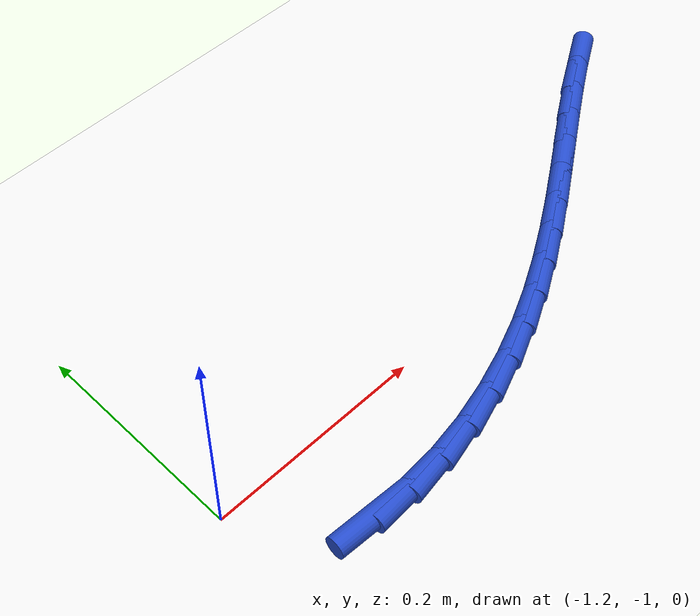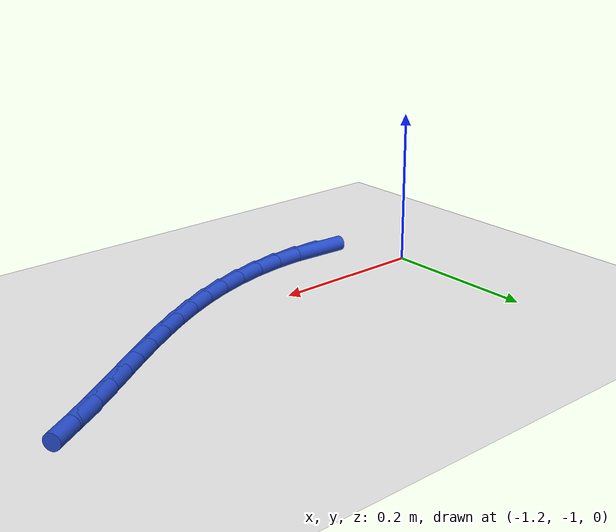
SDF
<sdf version="1.6">
 <world name="default">
  <model name="ground_plane">
   <static>1</static>
   <link name="link">
    <collision name="collision">
     <geometry><plane><normal>0 0 1</normal><size>100 100</size></plane></geometry>
     <surface><friction><ode><mu>100</mu><mu2>50</mu2></ode></friction></surface>
    </collision>
    <visual name="visual">
     <cast_shadows>0</cast_shadows>
     <geometry><plane><normal>0 0 1</normal><size>100 100</size></plane></geometry>
     <material>
      <script><uri>file://media/materials/scripts/gazebo.material</uri><name>Gazebo/WhiteGlow</name></script>
     </material>
    </visual>
   </link>
  </model>
  <model name="line">
   <link name="link_143">
    <pose>-1.1197795712026841 -1.0834802890524902 0.01 0 1.57 -0.05437794871093221</pose>
    <collision name="collision">
     <geometry><cylinder><radius>0.01</radius><length>0.08</length></cylinder></geometry>
    </collision>
    <visual name="visual">
     <material>
      <script><name>Gazebo/Blue</name><uri>file://media/materials/scripts/gazebo.material</uri></script>
     </material>
     <geometry><cylinder><radius>0.01</radius><length>0.08</length></cylinder></geometry>
    </visual>
   </link>
   <link name="link_144">
    <pose>-1.083799798507211 -1.0854387260081584 0.01 0 1.57 0.05459472218392307</pose>
    <collision name="collision">
     <geometry><cylinder><radius>0.01</radius><length>0.08</length></cylinder></geometry>
    </collision>
    <visual name="visual">
     <material>
      <script><name>Gazebo/Blue</name><uri>file://media/materials/scripts/gazebo.material</uri></script>
     </material>
     <geometry><cylinder><radius>0.01</radius><length>0.08</length></cylinder></geometry>
    </visual>
   </link>
   <link name="link_145">
    <pose>-1.0472900944861374 -1.0834435061595236 0.01 0 1.57 0.14937231876765494</pose>
    <collision name="collision">
     <geometry><cylinder><radius>0.01</radius><length>0.08</length></cylinder></geometry>
    </collision>
    <visual name="visual">
     <material>
      <script><name>Gazebo/Blue</name><uri>file://media/materials/scripts/gazebo.material</uri></script>
     </material>
     <geometry><cylinder><radius>0.01</radius><length>0.08</length></cylinder></geometry>
    </visual>
   </link>
   <link name="link_146">
    <pose>-1.010718047633984 -1.077939659595179 0.01 0 1.57 0.23259940332338705</pose>
    <collision name="collision">
     <geometry><cylinder><radius>0.01</radius><length>0.08</length></cylinder></geometry>
    </collision>
    <visual name="visual">
     <material>
      <script><name>Gazebo/Blue</name><uri>file://media/materials/scripts/gazebo.material</uri></script>
     </material>
     <geometry><cylinder><radius>0.01</radius><length>0.08</length></cylinder></geometry>
    </visual>
   </link>
   <link name="link_147">
    <pose>-0.9745512464452741 -1.0693722164037174 0.01 0 1.57 0.3069231724890567</pose>
    <collision name="collision">
     <geometry><cylinder><radius>0.01</radius><length>0.08</length></cylinder></geometry>
    </collision>
    <visual name="visual">
     <material>
      <script><name>Gazebo/Blue</name><uri>file://media/materials/scripts/gazebo.material</uri></script>
     </material>
     <geometry><cylinder><radius>0.01</radius><length>0.08</length></cylinder></geometry>
    </visual>
   </link>
   <link name="link_148">
    <pose>-0.9392572794145306 -1.0581862066737315 0.01 0 1.57 0.37455350536541643</pose>
    <collision name="collision">
     <geometry><cylinder><radius>0.01</radius><length>0.08</length></cylinder></geometry>
    </collision>
    <visual name="visual">
     <material>
      <script><name>Gazebo/Blue</name><uri>file://media/materials/scripts/gazebo.material</uri></script>
     </material>
     <geometry><cylinder><radius>0.01</radius><length>0.08</length></cylinder></geometry>
    </visual>
   </link>
   <link name="link_149">
    <pose>-0.9052346601818524 -1.0448115411055434 0.01 0 1.57 0.4347848502196121</pose>
    <collision name="collision">
     <geometry><cylinder><radius>0.01</radius><length>0.08</length></cylinder></geometry>
    </collision>
    <visual name="visual">
     <material>
      <script><name>Gazebo/Blue</name><uri>file://media/materials/scripts/gazebo.material</uri></script>
     </material>
     <geometry><cylinder><radius>0.01</radius><length>0.08</length></cylinder></geometry>
    </visual>
   </link>
   <link name="link_150">
    <pose>-0.8724421428407302 -1.029581874020989 0.01 0 1.57 0.4860658014575879</pose>
    <collision name="collision">
     <geometry><cylinder><radius>0.01</radius><length>0.08</length></cylinder></geometry>
    </collision>
    <visual name="visual">
     <material>
      <script><name>Gazebo/Blue</name><uri>file://media/materials/scripts/gazebo.material</uri></script>
     </material>
     <geometry><cylinder><radius>0.01</radius><length>0.08</length></cylinder></geometry>
    </visual>
   </link>
   <link name="link_151">
    <pose>-0.8406660169235041 -1.012793109989337 0.01 0 1.57 0.5276881173948608</pose>
    <collision name="collision">
     <geometry><cylinder><radius>0.01</radius><length>0.08</length></cylinder></geometry>
    </collision>
    <visual name="visual">
     <material>
      <script><name>Gazebo/Blue</name><uri>file://media/materials/scripts/gazebo.material</uri></script>
     </material>
     <geometry><cylinder><radius>0.01</radius><length>0.08</length></cylinder></geometry>
    </visual>
   </link>
   <link name="link_152">
    <pose>-0.8096921661973477 -0.994741064764308 0.01 0 1.57 0.5592724017632558</pose>
    <collision name="collision">
     <geometry><cylinder><radius>0.01</radius><length>0.08</length></cylinder></geometry>
    </collision>
    <visual name="visual">
     <material>
      <script><name>Gazebo/Blue</name><uri>file://media/materials/scripts/gazebo.material</uri></script>
     </material>
     <geometry><cylinder><radius>0.01</radius><length>0.08</length></cylinder></geometry>
    </visual>
   </link>
   <link name="link_153">
    <pose>-0.7793064744294327 -0.9757215540996212 0.01 0 1.57 0.5806635521513313</pose>
    <collision name="collision">
     <geometry><cylinder><radius>0.01</radius><length>0.08</length></cylinder></geometry>
    </collision>
    <visual name="visual">
     <material>
      <script><name>Gazebo/Blue</name><uri>file://media/materials/scripts/gazebo.material</uri></script>
     </material>
     <geometry><cylinder><radius>0.01</radius><length>0.08</length></cylinder></geometry>
    </visual>
   </link>
   <link name="link_154">
    <pose>-0.7492948253869326 -0.9560303937489976 0.01 0 1.57 0.5918389713854231</pose>
    <collision name="collision">
     <geometry><cylinder><radius>0.01</radius><length>0.08</length></cylinder></geometry>
    </collision>
    <visual name="visual">
     <material>
      <script><name>Gazebo/Blue</name><uri>file://media/materials/scripts/gazebo.material</uri></script>
     </material>
     <geometry><cylinder><radius>0.01</radius><length>0.08</length></cylinder></geometry>
    </visual>
   </link>
   <link name="link_155">
    <pose>-0.7194431028370203 -0.9359633994661563 0.01 0 1.57 0.592842226382931</pose>
    <collision name="collision">
     <geometry><cylinder><radius>0.01</radius><length>0.08</length></cylinder></geometry>
    </collision>
    <visual name="visual">
     <material>
      <script><name>Gazebo/Blue</name><uri>file://media/materials/scripts/gazebo.material</uri></script>
     </material>
     <geometry><cylinder><radius>0.01</radius><length>0.08</length></cylinder></geometry>
    </visual>
   </link>
   <link name="link_156">
    <pose>-0.6895371905468691 -0.9158163870048185 0.01 0 1.57 0.5837476036618279</pose>
    <collision name="collision">
     <geometry><cylinder><radius>0.01</radius><length>0.08</length></cylinder></geometry>
    </collision>
    <visual name="visual">
     <material>
      <script><name>Gazebo/Blue</name><uri>file://media/materials/scripts/gazebo.material</uri></script>
     </material>
     <geometry><cylinder><radius>0.01</radius><length>0.08</length></cylinder></geometry>
    </visual>
   </link>
   <link name="link_157">
    <pose>-0.6593629722836514 -0.8958851721187034 0.01 0 1.57 0.5646562100439495</pose>
    <collision name="collision">
     <geometry><cylinder><radius>0.01</radius><length>0.08</length></cylinder></geometry>
    </collision>
    <visual name="visual">
     <material>
      <script><name>Gazebo/Blue</name><uri>file://media/materials/scripts/gazebo.material</uri></script>
     </material>
     <geometry><cylinder><radius>0.01</radius><length>0.08</length></cylinder></geometry>
    </visual>
   </link>
   <link name="link_158">
    <pose>-0.6287063318145403 -0.8764655705615316 0.01 0 1.57 0.5370000327105922</pose>
    <collision name="collision">
     <geometry><cylinder><radius>0.01</radius><length>0.08</length></cylinder></geometry>
    </collision>
    <visual name="visual">
     <material>
      <script><name>Gazebo/Blue</name><uri>file://media/materials/scripts/gazebo.material</uri></script>
     </material>
     <geometry><cylinder><radius>0.01</radius><length>0.08</length></cylinder></geometry>
    </visual>
   </link>
  </model>
 </world>
</sdf>
